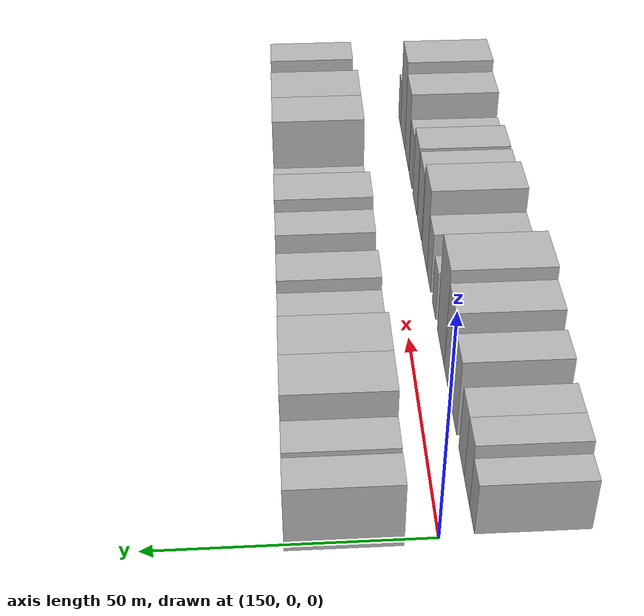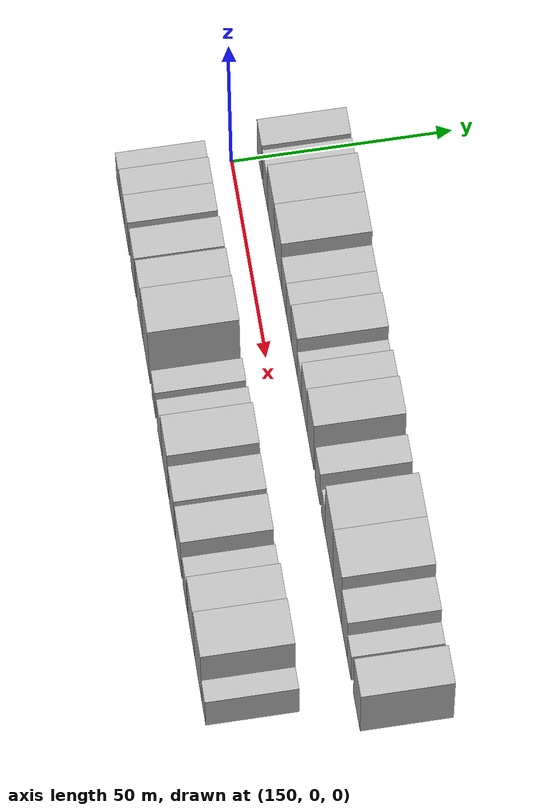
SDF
<sdf version="1.6">
 <world name="default">
  <model name="building_15">
   <static>1</static>
   <pose>152.2666 16.0000 0 0.000000 0.000000 1.570796</pose>
   <link name="link">
    <pose>0 0 7.50 0 0 0</pose>
    <collision name="collision"><geometry><box><size>20.0000 6.8674 15.0000</size></box></geometry></collision>
    <visual name="visual">
     <cast_shadows>0</cast_shadows>
     <geometry><box><size>20.0000 6.8674 15.0000</size></box></geometry>
     <material>
      <script>
       <uri>model://HANNAS_wall/materials/scripts</uri>
       <uri>model://HANNAS_wall/materials/textures</uri>
       <name>vrc/HANNAS_wall</name>
      </script>
     </material>
    </visual>
   </link>
  </model>
  <model name="building_16">
   <static>1</static>
   <pose>160.3227 16.0000 0 0.000000 0.000000 1.570796</pose>
   <link name="link">
    <pose>0 0 7.50 0 0 0</pose>
    <collision name="collision"><geometry><box><size>20.0000 7.2447 15.0000</size></box></geometry></collision>
    <visual name="visual">
     <cast_shadows>0</cast_shadows>
     <geometry><box><size>20.0000 7.2447 15.0000</size></box></geometry>
     <material>
      <script>
       <uri>model://HANNAS_wall/materials/scripts</uri>
       <uri>model://HANNAS_wall/materials/textures</uri>
       <name>vrc/HANNAS_wall</name>
      </script>
     </material>
    </visual>
   </link>
  </model>
  <model name="building_17">
   <static>1</static>
   <pose>168.8690 16.0000 0 0.000000 0.000000 1.570796</pose>
   <link name="link">
    <pose>0 0 10.50 0 0 0</pose>
    <collision name="collision"><geometry><box><size>20.0000 9.8481 21.0000</size></box></geometry></collision>
    <visual name="visual">
     <cast_shadows>0</cast_shadows>
     <geometry><box><size>20.0000 9.8481 21.0000</size></box></geometry>
     <material>
      <script>
       <uri>model://HANNAS_wall/materials/scripts</uri>
       <uri>model://HANNAS_wall/materials/textures</uri>
       <name>vrc/HANNAS_wall</name>
      </script>
     </material>
    </visual>
   </link>
  </model>
  <model name="building_18">
   <static>1</static>
   <pose>178.8394 16.0000 0 0.000000 0.000000 1.570796</pose>
   <link name="link">
    <pose>0 0 10.50 0 0 0</pose>
    <collision name="collision"><geometry><box><size>20.0000 10.0925 21.0000</size></box></geometry></collision>
    <visual name="visual">
     <cast_shadows>0</cast_shadows>
     <geometry><box><size>20.0000 10.0925 21.0000</size></box></geometry>
     <material>
      <script>
       <uri>model://HANNAS_wall/materials/scripts</uri>
       <uri>model://HANNAS_wall/materials/textures</uri>
       <name>vrc/HANNAS_wall</name>
      </script>
     </material>
    </visual>
   </link>
  </model>
  <model name="building_19">
   <static>1</static>
   <pose>187.1426 16.0000 0 0.000000 0.000000 1.570796</pose>
   <link name="link">
    <pose>0 0 7.50 0 0 0</pose>
    <collision name="collision"><geometry><box><size>20.0000 6.5140 15.0000</size></box></geometry></collision>
    <visual name="visual">
     <cast_shadows>0</cast_shadows>
     <geometry><box><size>20.0000 6.5140 15.0000</size></box></geometry>
     <material>
      <script>
       <uri>model://HANNAS_wall/materials/scripts</uri>
       <uri>model://HANNAS_wall/materials/textures</uri>
       <name>vrc/HANNAS_wall</name>
      </script>
     </material>
    </visual>
   </link>
  </model>
  <model name="building_20">
   <static>1</static>
   <pose>193.8943 16.0000 0 0.000000 0.000000 1.570796</pose>
   <link name="link">
    <pose>0 0 7.50 0 0 0</pose>
    <collision name="collision"><geometry><box><size>20.0000 6.9893 15.0000</size></box></geometry></collision>
    <visual name="visual">
     <cast_shadows>0</cast_shadows>
     <geometry><box><size>20.0000 6.9893 15.0000</size></box></geometry>
     <material>
      <script>
       <uri>model://HANNAS_wall/materials/scripts</uri>
       <uri>model://HANNAS_wall/materials/textures</uri>
       <name>vrc/HANNAS_wall</name>
      </script>
     </material>
    </visual>
   </link>
  </model>
  <model name="building_21">
   <static>1</static>
   <pose>201.6064 16.0000 0 0.000000 0.000000 1.570796</pose>
   <link name="link">
    <pose>0 0 9.00 0 0 0</pose>
    <collision name="collision"><geometry><box><size>20.0000 8.4348 18.0000</size></box></geometry></collision>
    <visual name="visual">
     <cast_shadows>0</cast_shadows>
     <geometry><box><size>20.0000 8.4348 18.0000</size></box></geometry>
     <material>
      <script>
       <uri>model://HANNAS_wall/materials/scripts</uri>
       <uri>model://HANNAS_wall/materials/textures</uri>
       <name>vrc/HANNAS_wall</name>
      </script>
     </material>
    </visual>
   </link>
  </model>
  <model name="building_22">
   <static>1</static>
   <pose>208.6975 16.0000 0 0.000000 0.000000 1.570796</pose>
   <link name="link">
    <pose>0 0 6.00 0 0 0</pose>
    <collision name="collision"><geometry><box><size>20.0000 5.7476 12.0000</size></box></geometry></collision>
    <visual name="visual">
     <cast_shadows>0</cast_shadows>
     <geometry><box><size>20.0000 5.7476 12.0000</size></box></geometry>
     <material>
      <script>
       <uri>model://HANNAS_wall/materials/scripts</uri>
       <uri>model://HANNAS_wall/materials/textures</uri>
       <name>vrc/HANNAS_wall</name>
      </script>
     </material>
    </visual>
   </link>
  </model>
  <model name="building_23">
   <static>1</static>
   <pose>215.4976 16.0000 0 0.000000 0.000000 1.570796</pose>
   <link name="link">
    <pose>0 0 9.00 0 0 0</pose>
    <collision name="collision"><geometry><box><size>20.0000 7.8526 18.0000</size></box></geometry></collision>
    <visual name="visual">
     <cast_shadows>0</cast_shadows>
     <geometry><box><size>20.0000 7.8526 18.0000</size></box></geometry>
     <material>
      <script>
       <uri>model://HANNAS_wall/materials/scripts</uri>
       <uri>model://HANNAS_wall/materials/textures</uri>
       <name>vrc/HANNAS_wall</name>
      </script>
     </material>
    </visual>
   </link>
  </model>
  <model name="building_24">
   <static>1</static>
   <pose>224.0036 16.0000 0 0.000000 0.000000 1.570796</pose>
   <link name="link">
    <pose>0 0 10.50 0 0 0</pose>
    <collision name="collision"><geometry><box><size>20.0000 9.1593 21.0000</size></box></geometry></collision>
    <visual name="visual">
     <cast_shadows>0</cast_shadows>
     <geometry><box><size>20.0000 9.1593 21.0000</size></box></geometry>
     <material>
      <script>
       <uri>model://HANNAS_wall/materials/scripts</uri>
       <uri>model://HANNAS_wall/materials/textures</uri>
       <name>vrc/HANNAS_wall</name>
      </script>
     </material>
    </visual>
   </link>
  </model>
  <model name="building_25">
   <static>1</static>
   <pose>233.9026 16.0000 0 0.000000 0.000000 1.570796</pose>
   <link name="link">
    <pose>0 0 7.50 0 0 0</pose>
    <collision name="collision"><geometry><box><size>20.0000 6.6388 15.0000</size></box></geometry></collision>
    <visual name="visual">
     <cast_shadows>0</cast_shadows>
     <geometry><box><size>20.0000 6.6388 15.0000</size></box></geometry>
     <material>
      <script>
       <uri>model://HANNAS_wall/materials/scripts</uri>
       <uri>model://HANNAS_wall/materials/textures</uri>
       <name>vrc/HANNAS_wall</name>
      </script>
     </material>
    </visual>
   </link>
  </model>
  <model name="building_26">
   <static>1</static>
   <pose>241.7194 16.0000 0 0.000000 0.000000 1.570796</pose>
   <link name="link">
    <pose>0 0 6.00 0 0 0</pose>
    <collision name="collision"><geometry><box><size>20.0000 4.9949 12.0000</size></box></geometry></collision>
    <visual name="visual">
     <cast_shadows>0</cast_shadows>
     <geometry><box><size>20.0000 4.9949 12.0000</size></box></geometry>
     <material>
      <script>
       <uri>model://HANNAS_wall/materials/scripts</uri>
       <uri>model://HANNAS_wall/materials/textures</uri>
       <name>vrc/HANNAS_wall</name>
      </script>
     </material>
    </visual>
   </link>
  </model>
  <model name="building_27">
   <static>1</static>
   <pose>249.4004 16.0000 0 0.000000 0.000000 1.570796</pose>
   <link name="link">
    <pose>0 0 12.00 0 0 0</pose>
    <collision name="collision"><geometry><box><size>20.0000 10.3670 24.0000</size></box></geometry></collision>
    <visual name="visual">
     <cast_shadows>0</cast_shadows>
     <geometry><box><size>20.0000 10.3670 24.0000</size></box></geometry>
     <material>
      <script>
       <uri>model://HANNAS_wall/materials/scripts</uri>
       <uri>model://HANNAS_wall/materials/textures</uri>
       <name>vrc/HANNAS_wall</name>
      </script>
     </material>
    </visual>
   </link>
  </model>
  <model name="building_28">
   <static>1</static>
   <pose>260.2053 16.0000 0 0.000000 0.000000 1.570796</pose>
   <link name="link">
    <pose>0 0 12.00 0 0 0</pose>
    <collision name="collision"><geometry><box><size>20.0000 11.2428 24.0000</size></box></geometry></collision>
    <visual name="visual">
     <cast_shadows>0</cast_shadows>
     <geometry><box><size>20.0000 11.2428 24.0000</size></box></geometry>
     <material>
      <script>
       <uri>model://HANNAS_wall/materials/scripts</uri>
       <uri>model://HANNAS_wall/materials/textures</uri>
       <name>vrc/HANNAS_wall</name>
      </script>
     </material>
    </visual>
   </link>
  </model>
  <model name="building_29">
   <static>1</static>
   <pose>269.7765 16.0000 0 0.000000 0.000000 1.570796</pose>
   <link name="link">
    <pose>0 0 9.00 0 0 0</pose>
    <collision name="collision"><geometry><box><size>20.0000 7.8995 18.0000</size></box></geometry></collision>
    <visual name="visual">
     <cast_shadows>0</cast_shadows>
     <geometry><box><size>20.0000 7.8995 18.0000</size></box></geometry>
     <material>
      <script>
       <uri>model://HANNAS_wall/materials/scripts</uri>
       <uri>model://HANNAS_wall/materials/textures</uri>
       <name>vrc/HANNAS_wall</name>
      </script>
     </material>
    </visual>
   </link>
  </model>
  <model name="building_30">
   <static>1</static>
   <pose>276.3027 16.0000 0 0.000000 0.000000 1.570796</pose>
   <link name="link">
    <pose>0 0 6.00 0 0 0</pose>
    <collision name="collision"><geometry><box><size>20.0000 5.1528 12.0000</size></box></geometry></collision>
    <visual name="visual">
     <cast_shadows>0</cast_shadows>
     <geometry><box><size>20.0000 5.1528 12.0000</size></box></geometry>
     <material>
      <script>
       <uri>model://HANNAS_wall/materials/scripts</uri>
       <uri>model://HANNAS_wall/materials/textures</uri>
       <name>vrc/HANNAS_wall</name>
      </script>
     </material>
    </visual>
   </link>
  </model>
  <model name="building_31">
   <static>1</static>
   <pose>286.2934 16.0000 0 0.000000 0.000000 1.570796</pose>
   <link name="link">
    <pose>0 0 9.00 0 0 0</pose>
    <collision name="collision"><geometry><box><size>20.0000 8.8286 18.0000</size></box></geometry></collision>
    <visual name="visual">
     <cast_shadows>0</cast_shadows>
     <geometry><box><size>20.0000 8.8286 18.0000</size></box></geometry>
     <material>
      <script>
       <uri>model://HANNAS_wall/materials/scripts</uri>
       <uri>model://HANNAS_wall/materials/textures</uri>
       <name>vrc/HANNAS_wall</name>
      </script>
     </material>
    </visual>
   </link>
  </model>
  <model name="building_48">
   <static>1</static>
   <pose>153.5626 -16.0000 0 0.000000 0.000000 1.570796</pose>
   <link name="link">
    <pose>0 0 6.00 0 0 0</pose>
    <collision name="collision"><geometry><box><size>20.0000 5.9171 12.0000</size></box></geometry></collision>
    <visual name="visual">
     <cast_shadows>0</cast_shadows>
     <geometry><box><size>20.0000 5.9171 12.0000</size></box></geometry>
     <material>
      <script>
       <uri>model://HANNAS_wall/materials/scripts</uri>
       <uri>model://HANNAS_wall/materials/textures</uri>
       <name>vrc/HANNAS_wall</name>
      </script>
     </material>
    </visual>
   </link>
  </model>
  <model name="building_49">
   <static>1</static>
   <pose>159.7974 -16.0000 0 0.000000 0.000000 1.570796</pose>
   <link name="link">
    <pose>0 0 7.50 0 0 0</pose>
    <collision name="collision"><geometry><box><size>20.0000 6.5526 15.0000</size></box></geometry></collision>
    <visual name="visual">
     <cast_shadows>0</cast_shadows>
     <geometry><box><size>20.0000 6.5526 15.0000</size></box></geometry>
     <material>
      <script>
       <uri>model://HANNAS_wall/materials/scripts</uri>
       <uri>model://HANNAS_wall/materials/textures</uri>
       <name>vrc/HANNAS_wall</name>
      </script>
     </material>
    </visual>
   </link>
  </model>
  <model name="building_50">
   <static>1</static>
   <pose>166.6296 -16.0000 0 0.000000 0.000000 1.570796</pose>
   <link name="link">
    <pose>0 0 7.50 0 0 0</pose>
    <collision name="collision"><geometry><box><size>20.0000 7.1117 15.0000</size></box></geometry></collision>
    <visual name="visual">
     <cast_shadows>0</cast_shadows>
     <geometry><box><size>20.0000 7.1117 15.0000</size></box></geometry>
     <material>
      <script>
       <uri>model://HANNAS_wall/materials/scripts</uri>
       <uri>model://HANNAS_wall/materials/textures</uri>
       <name>vrc/HANNAS_wall</name>
      </script>
     </material>
    </visual>
   </link>
  </model>
  <model name="building_51">
   <static>1</static>
   <pose>176.9816 -16.0000 0 0.000000 0.000000 1.570796</pose>
   <link name="link">
    <pose>0 0 9.00 0 0 0</pose>
    <collision name="collision"><geometry><box><size>20.0000 7.5923 18.0000</size></box></geometry></collision>
    <visual name="visual">
     <cast_shadows>0</cast_shadows>
     <geometry><box><size>20.0000 7.5923 18.0000</size></box></geometry>
     <material>
      <script>
       <uri>model://HANNAS_wall/materials/scripts</uri>
       <uri>model://HANNAS_wall/materials/textures</uri>
       <name>vrc/HANNAS_wall</name>
      </script>
     </material>
    </visual>
   </link>
  </model>
  <model name="building_52">
   <static>1</static>
   <pose>187.0522 -16.0000 0 0.000000 0.000000 1.570796</pose>
   <link name="link">
    <pose>0 0 10.50 0 0 0</pose>
    <collision name="collision"><geometry><box><size>20.0000 8.5488 21.0000</size></box></geometry></collision>
    <visual name="visual">
     <cast_shadows>0</cast_shadows>
     <geometry><box><size>20.0000 8.5488 21.0000</size></box></geometry>
     <material>
      <script>
       <uri>model://HANNAS_wall/materials/scripts</uri>
       <uri>model://HANNAS_wall/materials/textures</uri>
       <name>vrc/HANNAS_wall</name>
      </script>
     </material>
    </visual>
   </link>
  </model>
  <model name="building_53">
   <static>1</static>
   <pose>196.8157 -16.0000 0 0.000000 0.000000 1.570796</pose>
   <link name="link">
    <pose>0 0 12.00 0 0 0</pose>
    <collision name="collision"><geometry><box><size>20.0000 10.9782 24.0000</size></box></geometry></collision>
    <visual name="visual">
     <cast_shadows>0</cast_shadows>
     <geometry><box><size>20.0000 10.9782 24.0000</size></box></geometry>
     <material>
      <script>
       <uri>model://HANNAS_wall/materials/scripts</uri>
       <uri>model://HANNAS_wall/materials/textures</uri>
       <name>vrc/HANNAS_wall</name>
      </script>
     </material>
    </visual>
   </link>
  </model>
  <model name="building_54">
   <static>1</static>
   <pose>208.1074 -16.0000 0 0.000000 0.000000 1.570796</pose>
   <link name="link">
    <pose>0 0 6.00 0 0 0</pose>
    <collision name="collision"><geometry><box><size>20.0000 5.6052 12.0000</size></box></geometry></collision>
    <visual name="visual">
     <cast_shadows>0</cast_shadows>
     <geometry><box><size>20.0000 5.6052 12.0000</size></box></geometry>
     <material>
      <script>
       <uri>model://HANNAS_wall/materials/scripts</uri>
       <uri>model://HANNAS_wall/materials/textures</uri>
       <name>vrc/HANNAS_wall</name>
      </script>
     </material>
    </visual>
   </link>
  </model>
  <model name="building_55">
   <static>1</static>
   <pose>217.3409 -16.0000 0 0.000000 0.000000 1.570796</pose>
   <link name="link">
    <pose>0 0 7.50 0 0 0</pose>
    <collision name="collision"><geometry><box><size>20.0000 6.8616 15.0000</size></box></geometry></collision>
    <visual name="visual">
     <cast_shadows>0</cast_shadows>
     <geometry><box><size>20.0000 6.8616 15.0000</size></box></geometry>
     <material>
      <script>
       <uri>model://HANNAS_wall/materials/scripts</uri>
       <uri>model://HANNAS_wall/materials/textures</uri>
       <name>vrc/HANNAS_wall</name>
      </script>
     </material>
    </visual>
   </link>
  </model>
  <model name="building_56">
   <static>1</static>
   <pose>225.6757 -16.0000 0 0.000000 0.000000 1.570796</pose>
   <link name="link">
    <pose>0 0 10.50 0 0 0</pose>
    <collision name="collision"><geometry><box><size>20.0000 9.8080 21.0000</size></box></geometry></collision>
    <visual name="visual">
     <cast_shadows>0</cast_shadows>
     <geometry><box><size>20.0000 9.8080 21.0000</size></box></geometry>
     <material>
      <script>
       <uri>model://HANNAS_wall/materials/scripts</uri>
       <uri>model://HANNAS_wall/materials/textures</uri>
       <name>vrc/HANNAS_wall</name>
      </script>
     </material>
    </visual>
   </link>
  </model>
  <model name="building_57">
   <static>1</static>
   <pose>235.8396 -16.0000 0 0.000000 0.000000 1.570796</pose>
   <link name="link">
    <pose>0 0 9.00 0 0 0</pose>
    <collision name="collision"><geometry><box><size>20.0000 8.5198 18.0000</size></box></geometry></collision>
    <visual name="visual">
     <cast_shadows>0</cast_shadows>
     <geometry><box><size>20.0000 8.5198 18.0000</size></box></geometry>
     <material>
      <script>
       <uri>model://HANNAS_wall/materials/scripts</uri>
       <uri>model://HANNAS_wall/materials/textures</uri>
       <name>vrc/HANNAS_wall</name>
      </script>
     </material>
    </visual>
   </link>
  </model>
  <model name="building_58">
   <static>1</static>
   <pose>245.4225 -16.0000 0 0.000000 0.000000 1.570796</pose>
   <link name="link">
    <pose>0 0 9.00 0 0 0</pose>
    <collision name="collision"><geometry><box><size>20.0000 8.6460 18.0000</size></box></geometry></collision>
    <visual name="visual">
     <cast_shadows>0</cast_shadows>
     <geometry><box><size>20.0000 8.6460 18.0000</size></box></geometry>
     <material>
      <script>
       <uri>model://HANNAS_wall/materials/scripts</uri>
       <uri>model://HANNAS_wall/materials/textures</uri>
       <name>vrc/HANNAS_wall</name>
      </script>
     </material>
    </visual>
   </link>
  </model>
  <model name="building_59">
   <static>1</static>
   <pose>254.9222 -16.0000 0 0.000000 0.000000 1.570796</pose>
   <link name="link">
    <pose>0 0 7.50 0 0 0</pose>
    <collision name="collision"><geometry><box><size>20.0000 6.3532 15.0000</size></box></geometry></collision>
    <visual name="visual">
     <cast_shadows>0</cast_shadows>
     <geometry><box><size>20.0000 6.3532 15.0000</size></box></geometry>
     <material>
      <script>
       <uri>model://HANNAS_wall/materials/scripts</uri>
       <uri>model://HANNAS_wall/materials/textures</uri>
       <name>vrc/HANNAS_wall</name>
      </script>
     </material>
    </visual>
   </link>
  </model>
  <model name="building_60">
   <static>1</static>
   <pose>263.8725 -16.0000 0 0.000000 0.000000 1.570796</pose>
   <link name="link">
    <pose>0 0 10.50 0 0 0</pose>
    <collision name="collision"><geometry><box><size>20.0000 9.5473 21.0000</size></box></geometry></collision>
    <visual name="visual">
     <cast_shadows>0</cast_shadows>
     <geometry><box><size>20.0000 9.5473 21.0000</size></box></geometry>
     <material>
      <script>
       <uri>model://HANNAS_wall/materials/scripts</uri>
       <uri>model://HANNAS_wall/materials/textures</uri>
       <name>vrc/HANNAS_wall</name>
      </script>
     </material>
    </visual>
   </link>
  </model>
  <model name="building_61">
   <static>1</static>
   <pose>273.8852 -16.0000 0 0.000000 0.000000 1.570796</pose>
   <link name="link">
    <pose>0 0 12.00 0 0 0</pose>
    <collision name="collision"><geometry><box><size>20.0000 10.4781 24.0000</size></box></geometry></collision>
    <visual name="visual">
     <cast_shadows>0</cast_shadows>
     <geometry><box><size>20.0000 10.4781 24.0000</size></box></geometry>
     <material>
      <script>
       <uri>model://HANNAS_wall/materials/scripts</uri>
       <uri>model://HANNAS_wall/materials/textures</uri>
       <name>vrc/HANNAS_wall</name>
      </script>
     </material>
    </visual>
   </link>
  </model>
  <model name="building_62">
   <static>1</static>
   <pose>281.6918 -16.0000 0 0.000000 0.000000 1.570796</pose>
   <link name="link">
    <pose>0 0 6.00 0 0 0</pose>
    <collision name="collision"><geometry><box><size>20.0000 5.1352 12.0000</size></box></geometry></collision>
    <visual name="visual">
     <cast_shadows>0</cast_shadows>
     <geometry><box><size>20.0000 5.1352 12.0000</size></box></geometry>
     <material>
      <script>
       <uri>model://HANNAS_wall/materials/scripts</uri>
       <uri>model://HANNAS_wall/materials/textures</uri>
       <name>vrc/HANNAS_wall</name>
      </script>
     </material>
    </visual>
   </link>
  </model>
 </world>
</sdf>
